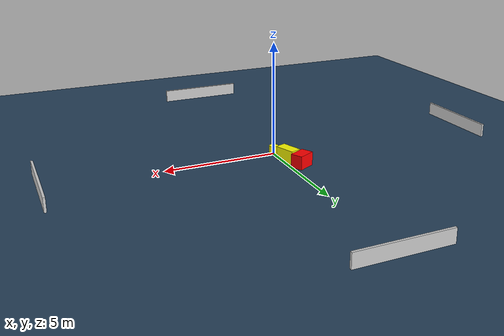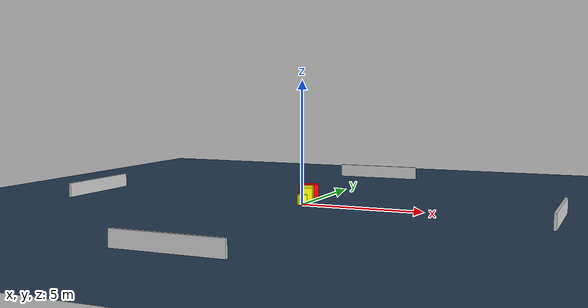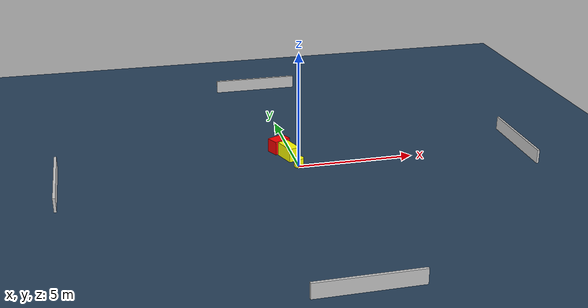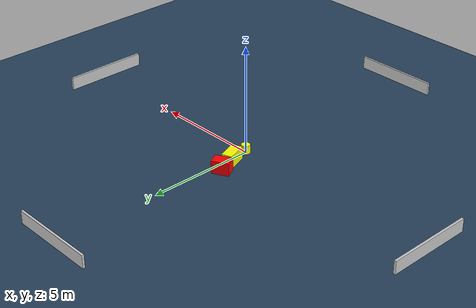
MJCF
<?xml version="1.0" ?>
<mujoco model="generated_environment">
  <option timestep="0.01" integrator="RK4" cone="elliptic"/>
  <default>
    <geom density="1"/>
  </default>
  <asset>
    <texture builtin="gradient" height="3072" name="skybox" rgb1="0.3 0.5 0.7" rgb2="0 0 0" type="skybox" width="512"/>
    <texture builtin="checker" height="300" name="groundplane" rgb1="0.2 0.3 0.4" rgb2="0.1 0.2 0.3" type="2d" width="300"/>
    <material name="groundplane" reflectance="0.2" texrepeat="5 5" texture="groundplane"/>
  </asset>
  <worldbody>
    <light dir="0 0 -1" directional="true" pos="0 0 1.5"/>
    <geom condim="3" friction="0.5 0.005 0.001" material="groundplane" name="floor" pos="0 0 0" size="0 0 0.05" type="plane"/>
    <body name="walls">
      <geom name="wall_1" condim="4" pos="-10.0 0.0 0.3" rgba="0.800000011920929 0.800000011920929 0.800000011920929 1.0" size="0.05 2.0 0.3" type="box"/>
      <geom name="wall_2" condim="4" pos="10.0 0.0 0.3" rgba="0.800000011920929 0.800000011920929 0.800000011920929 1.0" size="0.05 2.0 0.3" type="box"/>
      <geom name="wall_3" condim="4" pos="0.0 -10.0 0.3" rgba="0.800000011920929 0.800000011920929 0.800000011920929 1.0" size="2.0 0.05 0.3" type="box"/>
      <geom name="wall_4" condim="4" pos="0.0 10.0 0.3" rgba="0.800000011920929 0.800000011920929 0.800000011920929 1.0" size="2.0 0.05 0.3" type="box"/>
    </body>
    <body name="robot">
      <joint name="joint_x" type="slide" pos="0 0 0" axis="1 0 0"/>
      <joint name="joint_y" type="slide" pos="0 0 0" axis="0 1 0"/>
      <geom name="robot" type="cylinder" pos="0.0 0.0 0.2" size="0.2 0.2 0.0" mass="5.0" friction="1.0 0.005 0.0001" condim="4" rgba="1.0 1.0 0.0 1.0"/>
    </body>
    <body name="obstacle_1_movable">
      <geom name="obstacle_1_movable" condim="4" pos="-0.21997328881314587 1.009279469665736 0.3" euler="0 0 199.0741319112491" friction="0.0 0.005 0.001" rgba="1.0 1.0 0.0 1.0" size="0.24439227634990118 0.47640865655052106 0.3" type="box" mass="0.1"/>
      <joint type="free"/>
    </body>
    <body name="obstacle_2_static">
      <geom name="obstacle_2_static" condim="4" pos="-0.47478363375738425 1.8140261077781277 0.3" euler="0 0 207.18354172581954" friction="0.0 0.005 0.001" rgba="1.0 0.0 0.0 1.0" size="0.3929422108546068 0.27017077794862226 0.3" type="box"/>
    </body>
  </worldbody>
  <actuator>
    <motor name="actuator_x" joint="joint_x" gear="1" ctrlrange="-1 1"/>
    <motor name="actuator_y" joint="joint_y" gear="1" ctrlrange="-1 1"/>
  </actuator>
</mujoco>
